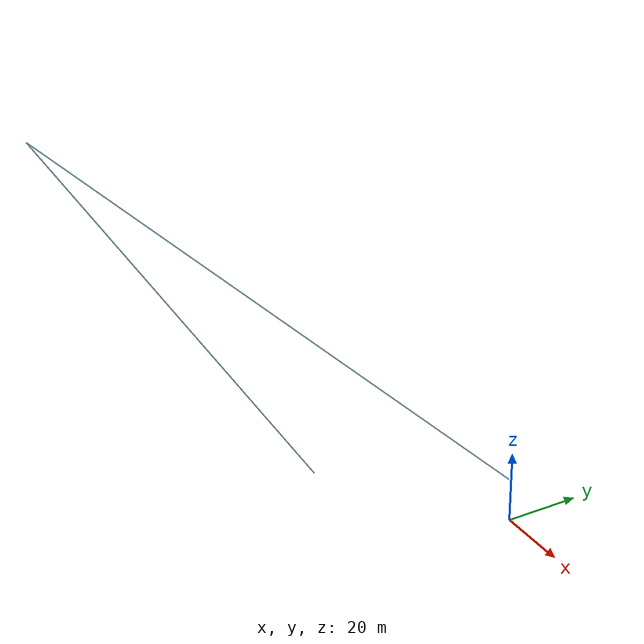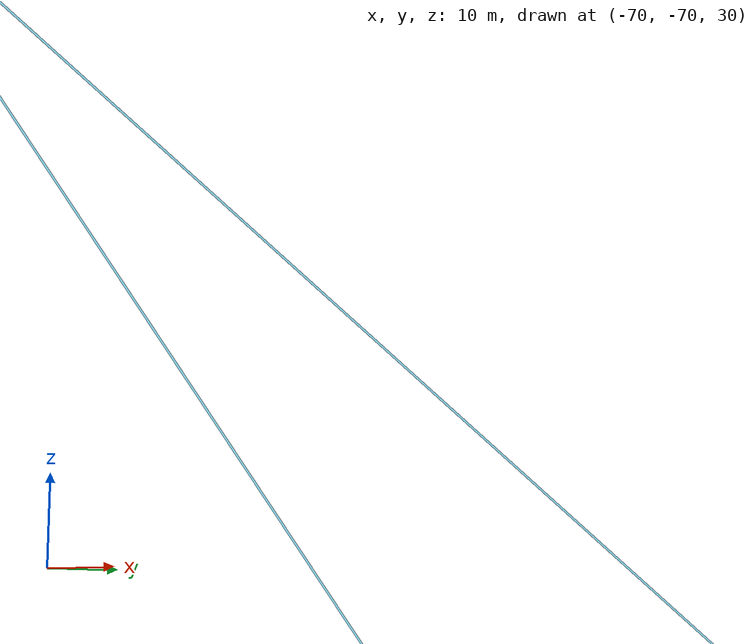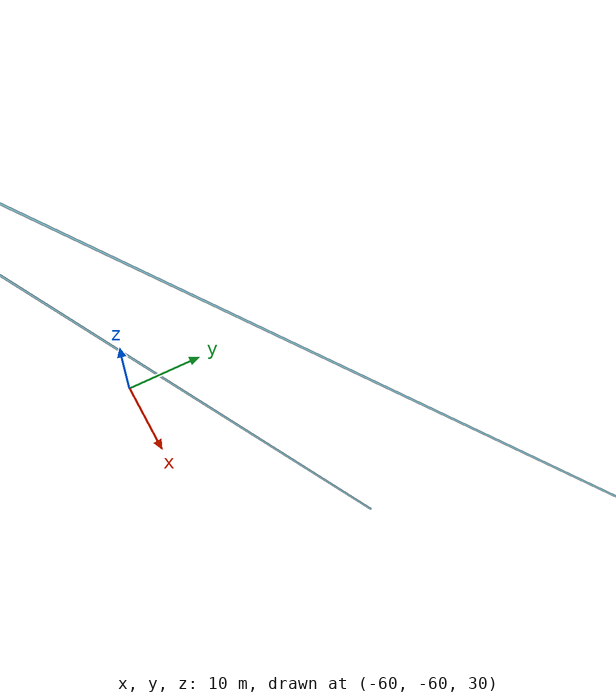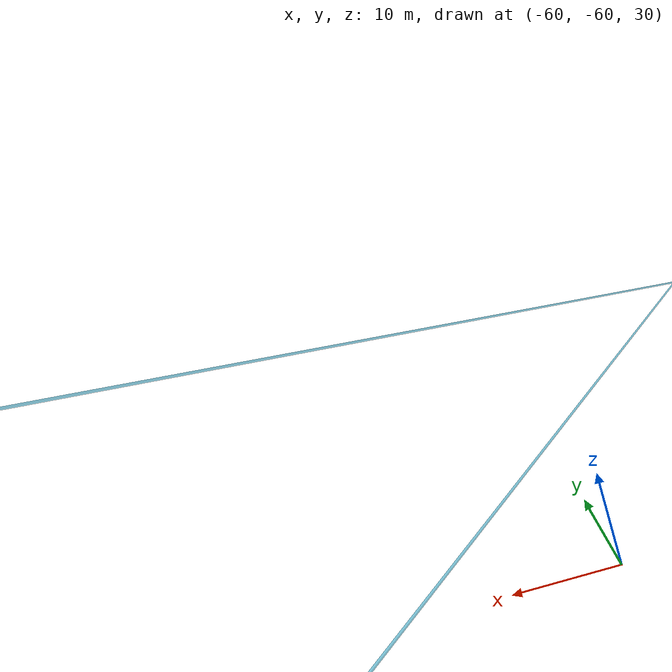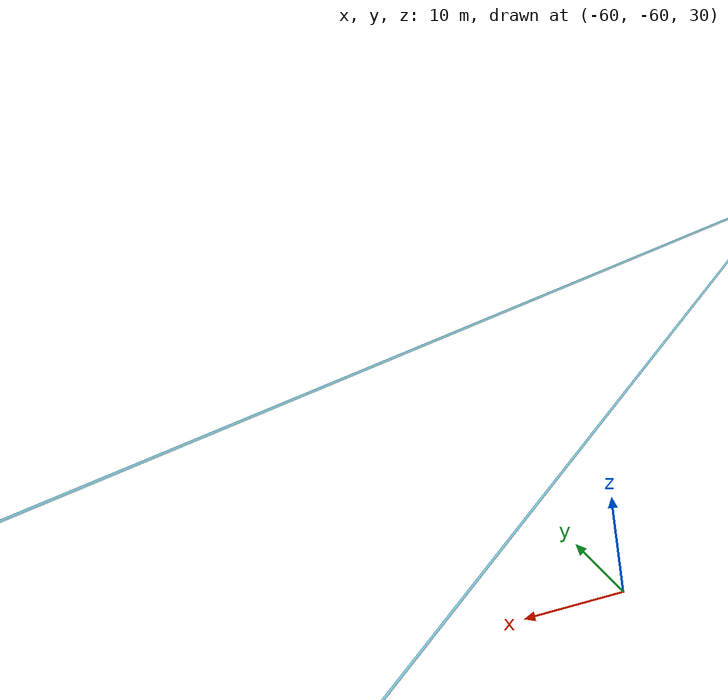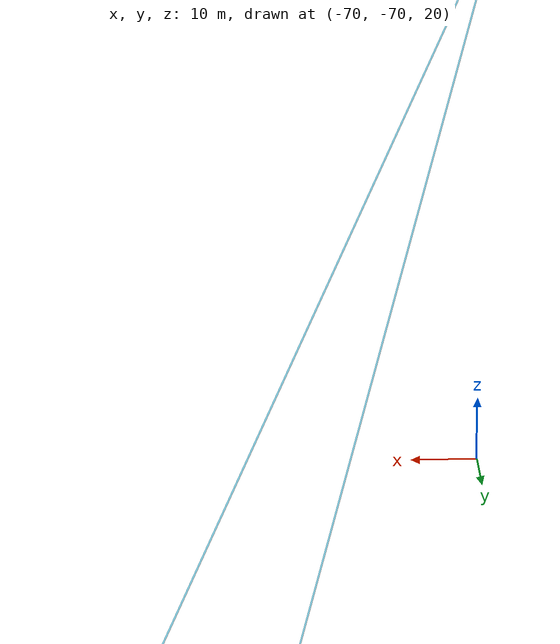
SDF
<?xml version="1.0" ?>
<sdf version="1.9">
  <model name="beam_B"><static>true</static><link name="l"><visual name="leg0"><pose>-42.700 -43.600 51.614 0 0.8979 -2.1318</pose><geometry><cylinder><radius>0.12</radius><length>155.260</length></cylinder></geometry><material><ambient>0.3 0.85 1 1</ambient><diffuse>0.3 0.85 1 1</diffuse><specular>0.1 0.1 0.1 1</specular><emissive>0.3 0.85 1 1</emissive></material><transparency>0.35</transparency><cast_shadows>false</cast_shadows></visual><visual name="leg1"><pose>-57.750 -64.500 51.614 0 2.5148 1.0561</pose><geometry><cylinder><radius>0.12</radius><length>119.483</length></cylinder></geometry><material><ambient>0.3 0.85 1 1</ambient><diffuse>0.3 0.85 1 1</diffuse><specular>0.1 0.1 0.1 1</specular><emissive>0.3 0.85 1 1</emissive></material><transparency>0.35</transparency><cast_shadows>false</cast_shadows></visual></link></model>
</sdf>
